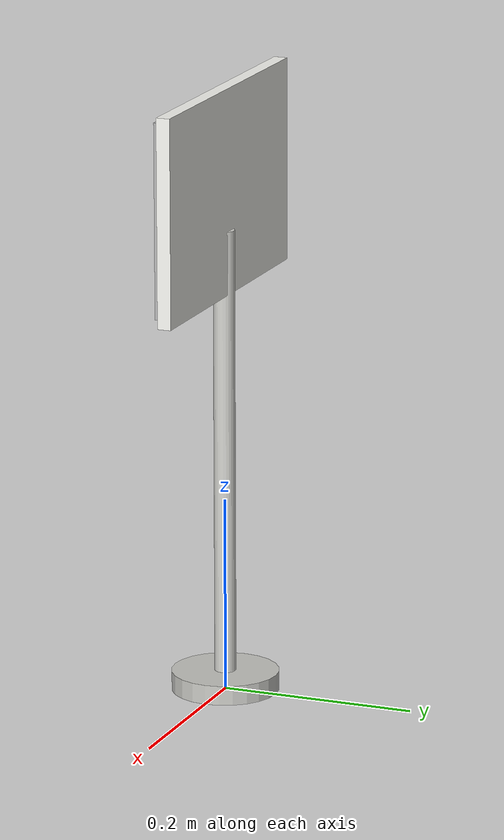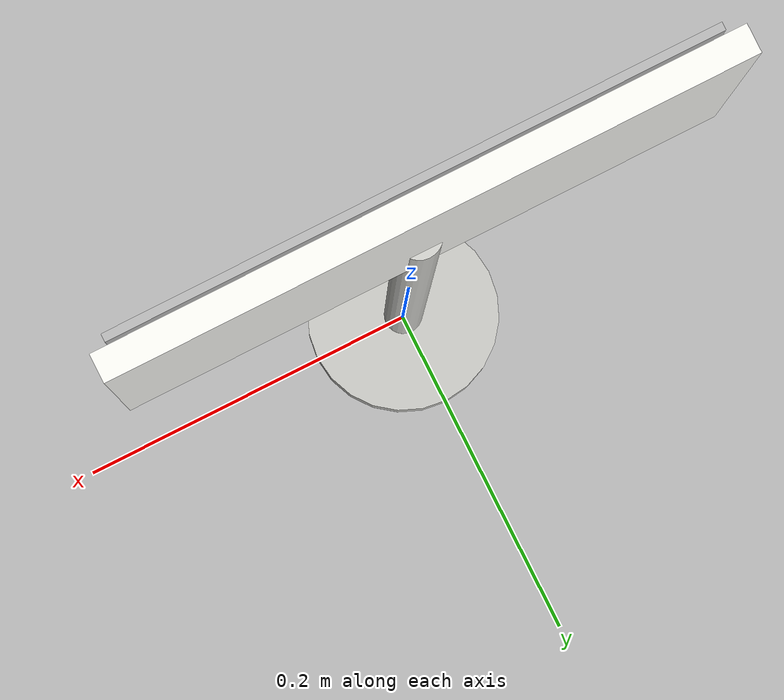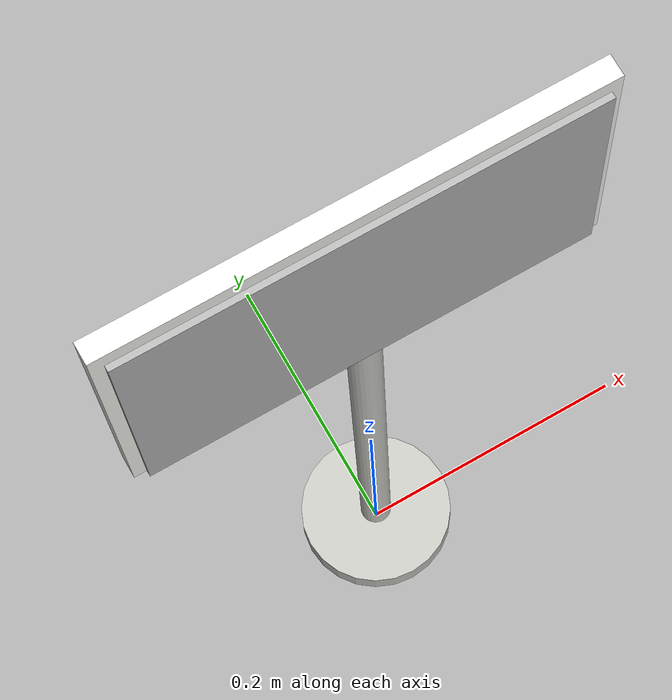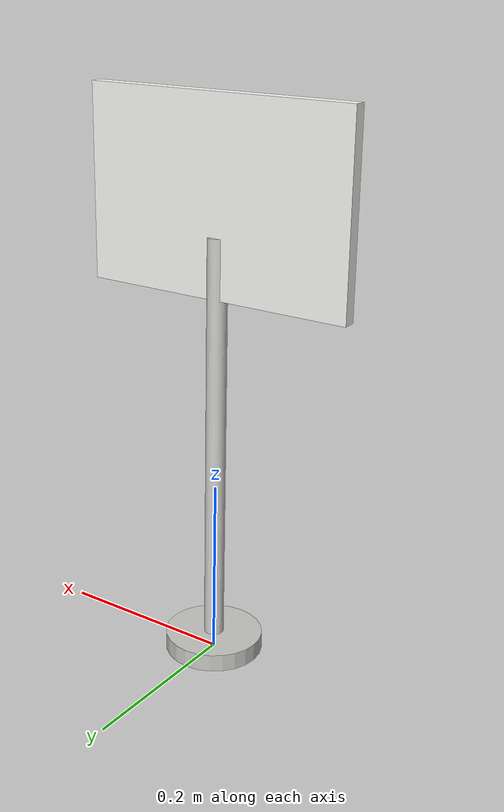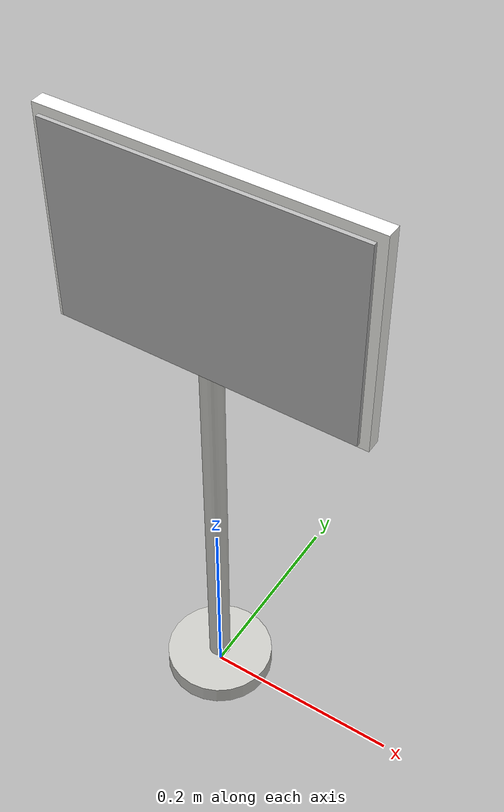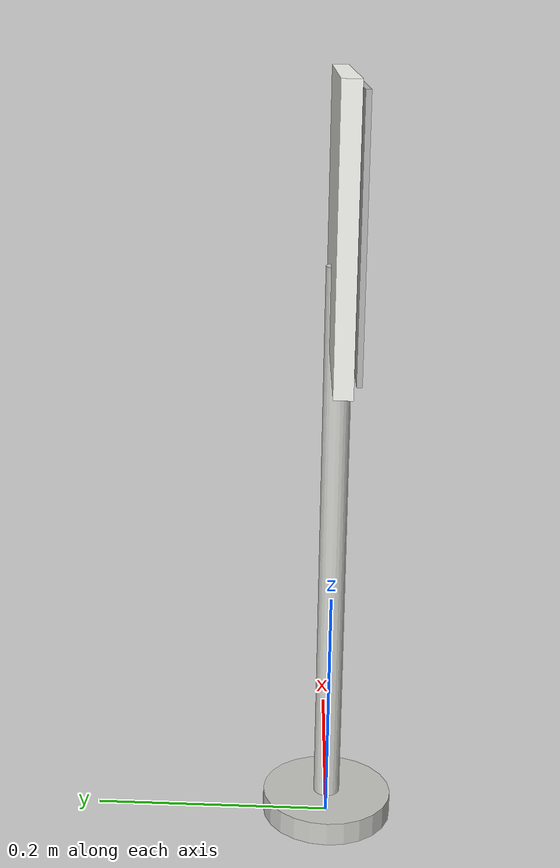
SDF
<?xml version="1.0"?>
<sdf version="1.6">
  <model name="road_sign_parking">
    <static>true</static>
    <link name="sign_link">
      <visual name="base_visual">
        <pose>0 0 0.010 0 0 0</pose>
        <geometry>
          <cylinder>
            <radius>0.055</radius>
            <length>0.020</length>
          </cylinder>
        </geometry>
        <material>
          <ambient>0.72 0.72 0.70 1</ambient>
          <diffuse>0.78 0.78 0.76 1</diffuse>
        </material>
      </visual>
      <visual name="pole_visual">
        <pose>0 0 0.245 0 0 0</pose>
        <geometry>
          <cylinder>
            <radius>0.011</radius>
            <length>0.470</length>
          </cylinder>
        </geometry>
        <material>
          <ambient>0.72 0.72 0.70 1</ambient>
          <diffuse>0.82 0.82 0.80 1</diffuse>
        </material>
      </visual>
      <visual name="back_plate_visual">
        <pose>0 0 0.520 0 0 0</pose>
        <geometry>
          <box>
            <size>0.310 0.014 0.210</size>
          </box>
        </geometry>
        <material>
          <ambient>0.96 0.96 0.94 1</ambient>
          <diffuse>0.98 0.98 0.96 1</diffuse>
        </material>
      </visual>
      <visual name="sign_face_visual">
        <pose>0 -0.011 0.520 0 0 0</pose>
        <geometry>
          <box>
            <size>0.294 0.004 0.196</size>
          </box>
        </geometry>
        <material>
          <script>
            <uri>model://road_sign_parking/materials/scripts</uri>
            <uri>model://road_sign_parking/materials/textures</uri>
            <name>RoadSign/Parking</name>
          </script>
        </material>
      </visual>
    </link>
  </model>
</sdf>
